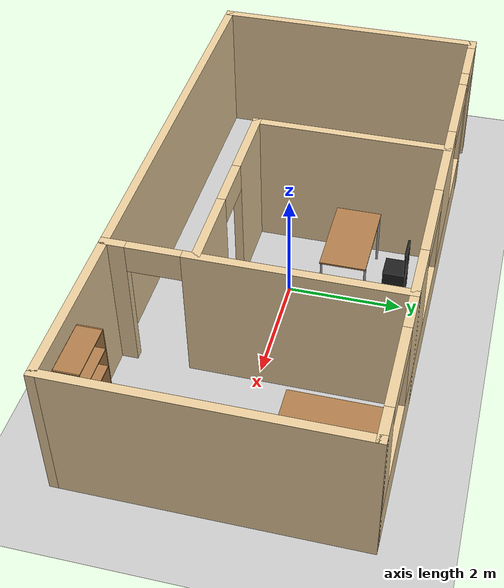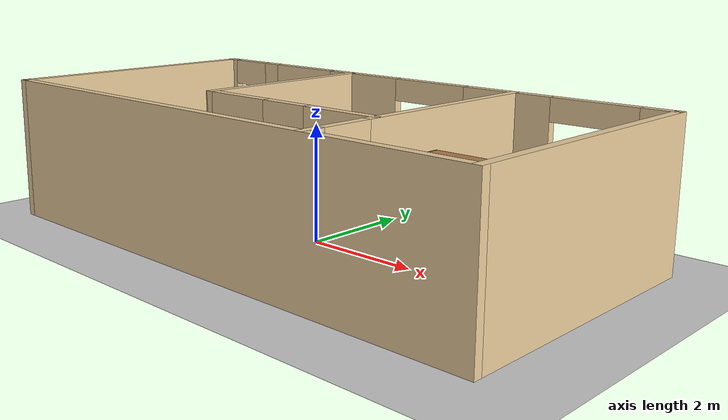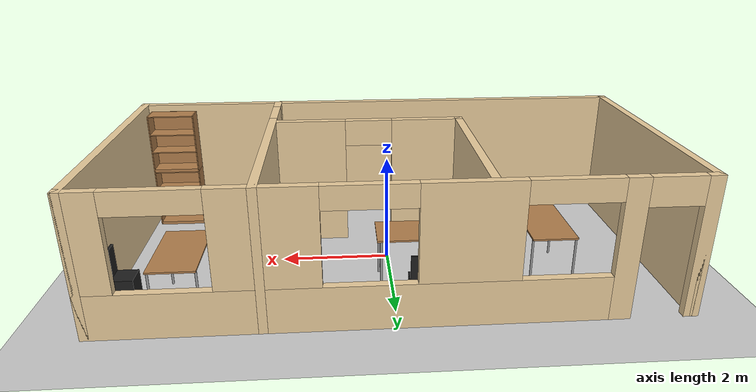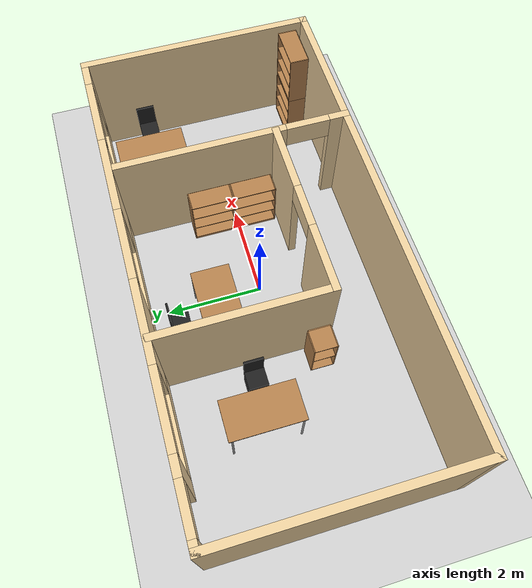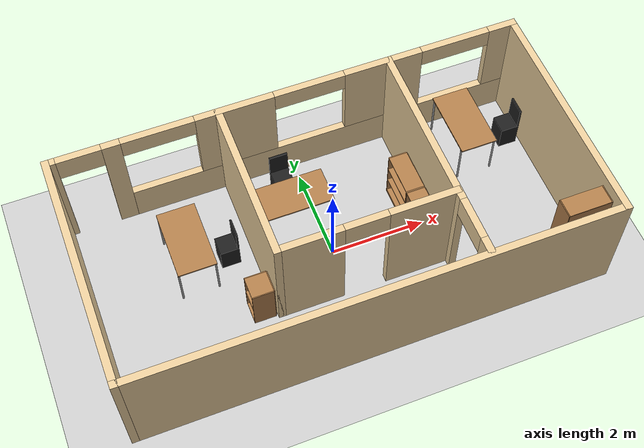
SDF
<sdf version="1.6">
 <world name="default">
  <light name="sun" type="directional">
   <pose>0 0 10 0 -0 0</pose>
   <diffuse>0.8 0.8 0.8 1</diffuse>
   <specular>0.2 0.2 0.2 1</specular>
   <attenuation>
    <range>1000</range>
    <constant>0.9</constant>
    <linear>0.01</linear>
    <quadratic>0.001</quadratic>
   </attenuation>
   <direction>-0.5 0.1 -0.9</direction>
  </light>
  <model name="ground_plane">
   <static>1</static>
   <link name="link">
    <collision name="collision">
     <geometry><plane><normal>0 0 1</normal><size>100 100</size></plane></geometry>
     <surface>
      <contact><collide_bitmask>65535</collide_bitmask></contact>
      <friction><ode><mu>100</mu><mu2>50</mu2></ode></friction>
     </surface>
    </collision>
    <visual name="visual">
     <cast_shadows>0</cast_shadows>
     <geometry><plane><normal>0 0 1</normal><size>100 100</size></plane></geometry>
     <material>
      <script><uri>file://media/materials/scripts/gazebo.material</uri><name>Gazebo/Grey</name></script>
     </material>
    </visual>
   </link>
  </model>
  <gravity>0 0 -9.8</gravity>
  <magnetic_field>6e-06 2.3e-05 -4.2e-05</magnetic_field>
  <atmosphere type="adiabatic"/>
  <physics name="default_physics" default="0" type="ode">
   <max_step_size>0.001</max_step_size>
   <real_time_factor>1</real_time_factor>
   <real_time_update_rate>1000</real_time_update_rate>
  </physics>
  <scene><ambient>0.4 0.4 0.4 1</ambient><background>0.7 0.7 0.7 1</background><shadows>1</shadows></scene>
  <spherical_coordinates>
   <surface_model>EARTH_WGS84</surface_model>
   <latitude_deg>0</latitude_deg>
   <longitude_deg>0</longitude_deg>
   <elevation>0</elevation>
   <heading_deg>0</heading_deg>
  </spherical_coordinates>
  <model name="Office">
   <pose>0 0 -0.002434 0 -0 0</pose>
   <link name="Wall_11">
    <pose>2.151 0 0 0 0 -1.5708</pose>
    <visual name="Wall_11_Visual_0">
     <pose>-0.664075 0 1.25 0 -0 0</pose>
     <geometry><box><size>3.67185 0.15 2.5</size></box></geometry>
     <material>
      <script><uri>file://media/materials/scripts/gazebo.material</uri><name>Gazebo/Grey</name></script>
      <ambient>0.921569 0.807843 0.615686 1</ambient>
     </material>
     <meta><layer>0</layer></meta>
    </visual>
    <collision name="Wall_11_Collision_0">
     <geometry><box><size>3.67185 0.15 2.5</size></box></geometry>
     <pose>-0.664075 0 1.25 0 -0 0</pose>
    </collision>
    <visual name="Wall_11_Visual_1">
     <pose>2.28593 0 1.25 0 -0 0</pose>
     <geometry><box><size>0.42815 0.15 2.5</size></box></geometry>
     <material>
      <script><uri>file://media/materials/scripts/gazebo.material</uri><name>Gazebo/Grey</name></script>
      <ambient>0.921569 0.807843 0.615686 1</ambient>
     </material>
     <meta><layer>0</layer></meta>
    </visual>
    <collision name="Wall_11_Collision_1">
     <geometry><box><size>0.42815 0.15 2.5</size></box></geometry>
     <pose>2.28593 0 1.25 0 -0 0</pose>
    </collision>
    <visual name="Wall_11_Visual_2">
     <pose>1.62185 0 2.25 0 -0 0</pose>
     <geometry><box><size>0.9 0.15 0.5</size></box></geometry>
     <material>
      <script><uri>file://media/materials/scripts/gazebo.material</uri><name>Gazebo/Grey</name></script>
      <ambient>0.921569 0.807843 0.615686 1</ambient>
     </material>
     <meta><layer>0</layer></meta>
    </visual>
    <collision name="Wall_11_Collision_2">
     <geometry><box><size>0.9 0.15 0.5</size></box></geometry>
     <pose>1.62185 0 2.25 0 -0 0</pose>
    </collision>
   </link>
   <link name="Wall_13">
    <collision name="Wall_13_Collision">
     <geometry><box><size>3.5 0.15 2.5</size></box></geometry>
     <pose>0 0 1.25 0 -0 0</pose>
    </collision>
    <visual name="Wall_13_Visual">
     <pose>0 0 1.25 0 -0 0</pose>
     <geometry><box><size>3.5 0.15 2.5</size></box></geometry>
     <material>
      <script><uri>file://media/materials/scripts/gazebo.material</uri><name>Gazebo/Grey</name></script>
      <ambient>0.921569 0.807843 0.615686 1</ambient>
     </material>
     <meta><layer>0</layer></meta>
    </visual>
    <pose>-1.473 0.723 0 0 0 -1.5708</pose>
   </link>
   <link name="Wall_14">
    <pose>0.327 -0.952 0 0 -0 0</pose>
    <visual name="Wall_14_Visual_0">
     <pose>-1.17643 0 1.25 0 -0 0</pose>
     <geometry><box><size>1.39715 0.15 2.5</size></box></geometry>
     <material>
      <script><uri>file://media/materials/scripts/gazebo.material</uri><name>Gazebo/Grey</name></script>
      <ambient>0.921569 0.807843 0.615686 1</ambient>
     </material>
     <meta><layer>0</layer></meta>
    </visual>
    <collision name="Wall_14_Collision_0">
     <geometry><box><size>1.39715 0.15 2.5</size></box></geometry>
     <pose>-1.17643 0 1.25 0 -0 0</pose>
    </collision>
    <visual name="Wall_14_Visual_1">
     <pose>1.14857 0 1.25 0 -0 0</pose>
     <geometry><box><size>1.45285 0.15 2.5</size></box></geometry>
     <material>
      <script><uri>file://media/materials/scripts/gazebo.material</uri><name>Gazebo/Grey</name></script>
      <ambient>0.921569 0.807843 0.615686 1</ambient>
     </material>
     <meta><layer>0</layer></meta>
    </visual>
    <collision name="Wall_14_Collision_1">
     <geometry><box><size>1.45285 0.15 2.5</size></box></geometry>
     <pose>1.14857 0 1.25 0 -0 0</pose>
    </collision>
    <visual name="Wall_14_Visual_2">
     <pose>-0.02785 0 2.25 0 -0 0</pose>
     <geometry><box><size>0.9 0.15 0.5</size></box></geometry>
     <material>
      <script><uri>file://media/materials/scripts/gazebo.material</uri><name>Gazebo/Grey</name></script>
      <ambient>0.921569 0.807843 0.615686 1</ambient>
     </material>
     <meta><layer>0</layer></meta>
    </visual>
    <collision name="Wall_14_Collision_2">
     <geometry><box><size>0.9 0.15 0.5</size></box></geometry>
     <pose>-0.02785 0 2.25 0 -0 0</pose>
    </collision>
   </link>
   <link name="Wall_6">
    <pose>0 2.425 0 0 -0 0</pose>
    <visual name="Wall_6_Visual_0">
     <pose>-4.8701 0 1.25 0 -0 0</pose>
     <geometry><box><size>0.2598 0.15 2.5</size></box></geometry>
     <material>
      <script><uri>file://media/materials/scripts/gazebo.material</uri><name>Gazebo/Grey</name></script>
      <ambient>0.921569 0.807843 0.615686 1</ambient>
     </material>
     <meta><layer>0</layer></meta>
    </visual>
    <collision name="Wall_6_Collision_0">
     <geometry><box><size>0.2598 0.15 2.5</size></box></geometry>
     <pose>-4.8701 0 1.25 0 -0 0</pose>
    </collision>
    <visual name="Wall_6_Visual_1">
     <pose>-3.65331 0 1.25 0 -0 0</pose>
     <geometry><box><size>0.373775 0.15 2.5</size></box></geometry>
     <material>
      <script><uri>file://media/materials/scripts/gazebo.material</uri><name>Gazebo/Grey</name></script>
      <ambient>0.921569 0.807843 0.615686 1</ambient>
     </material>
     <meta><layer>0</layer></meta>
    </visual>
    <collision name="Wall_6_Collision_1">
     <geometry><box><size>0.373775 0.15 2.5</size></box></geometry>
     <pose>-3.65331 0 1.25 0 -0 0</pose>
    </collision>
    <visual name="Wall_6_Visual_2">
     <pose>0.766788 0 0.4 0 -0 0</pose>
     <geometry><box><size>8.46642 0.15 0.8</size></box></geometry>
     <material>
      <script><uri>file://media/materials/scripts/gazebo.material</uri><name>Gazebo/Grey</name></script>
      <ambient>0.921569 0.807843 0.615686 1</ambient>
     </material>
     <meta><layer>0</layer></meta>
    </visual>
    <collision name="Wall_6_Collision_2">
     <geometry><box><size>8.46642 0.15 0.8</size></box></geometry>
     <pose>0.766788 0 0.4 0 -0 0</pose>
    </collision>
    <visual name="Wall_6_Visual_3">
     <pose>-1.14148 0 1.65 0 -0 0</pose>
     <geometry><box><size>1.64989 0.15 1.7</size></box></geometry>
     <material>
      <script><uri>file://media/materials/scripts/gazebo.material</uri><name>Gazebo/Grey</name></script>
      <ambient>0.921569 0.807843 0.615686 1</ambient>
     </material>
     <meta><layer>0</layer></meta>
    </visual>
    <collision name="Wall_6_Collision_3">
     <geometry><box><size>1.64989 0.15 1.7</size></box></geometry>
     <pose>-1.14148 0 1.65 0 -0 0</pose>
    </collision>
    <visual name="Wall_6_Visual_4">
     <pose>2.02591 0 1.65 0 -0 0</pose>
     <geometry><box><size>1.68489 0.15 1.7</size></box></geometry>
     <material>
      <script><uri>file://media/materials/scripts/gazebo.material</uri><name>Gazebo/Grey</name></script>
      <ambient>0.921569 0.807843 0.615686 1</ambient>
     </material>
     <meta><layer>0</layer></meta>
    </visual>
    <collision name="Wall_6_Collision_4">
     <geometry><box><size>1.68489 0.15 1.7</size></box></geometry>
     <pose>2.02591 0 1.65 0 -0 0</pose>
    </collision>
    <visual name="Wall_6_Visual_5">
     <pose>4.68417 0 1.65 0 -0 0</pose>
     <geometry><box><size>0.63165 0.15 1.7</size></box></geometry>
     <material>
      <script><uri>file://media/materials/scripts/gazebo.material</uri><name>Gazebo/Grey</name></script>
      <ambient>0.921569 0.807843 0.615686 1</ambient>
     </material>
     <meta><layer>0</layer></meta>
    </visual>
    <collision name="Wall_6_Collision_5">
     <geometry><box><size>0.63165 0.15 1.7</size></box></geometry>
     <pose>4.68417 0 1.65 0 -0 0</pose>
    </collision>
    <visual name="Wall_6_Visual_6">
     <pose>-4.2902 0 2.25 0 -0 0</pose>
     <geometry><box><size>0.9 0.15 0.5</size></box></geometry>
     <material>
      <script><uri>file://media/materials/scripts/gazebo.material</uri><name>Gazebo/Grey</name></script>
      <ambient>0.921569 0.807843 0.615686 1</ambient>
     </material>
     <meta><layer>0</layer></meta>
    </visual>
    <collision name="Wall_6_Collision_6">
     <geometry><box><size>0.9 0.15 0.5</size></box></geometry>
     <pose>-4.2902 0 2.25 0 -0 0</pose>
    </collision>
    <visual name="Wall_6_Visual_7">
     <pose>-2.71643 0 2.3 0 -0 0</pose>
     <geometry><box><size>1.5 0.15 0.4</size></box></geometry>
     <material>
      <script><uri>file://media/materials/scripts/gazebo.material</uri><name>Gazebo/Grey</name></script>
      <ambient>0.921569 0.807843 0.615686 1</ambient>
     </material>
     <meta><layer>0</layer></meta>
    </visual>
    <collision name="Wall_6_Collision_7">
     <geometry><box><size>1.5 0.15 0.4</size></box></geometry>
     <pose>-2.71643 0 2.3 0 -0 0</pose>
    </collision>
    <visual name="Wall_6_Visual_8">
     <pose>0.433462 0 2.3 0 -0 0</pose>
     <geometry><box><size>1.5 0.15 0.4</size></box></geometry>
     <material>
      <script><uri>file://media/materials/scripts/gazebo.material</uri><name>Gazebo/Grey</name></script>
      <ambient>0.921569 0.807843 0.615686 1</ambient>
     </material>
     <meta><layer>0</layer></meta>
    </visual>
    <collision name="Wall_6_Collision_8">
     <geometry><box><size>1.5 0.15 0.4</size></box></geometry>
     <pose>0.433462 0 2.3 0 -0 0</pose>
    </collision>
    <visual name="Wall_6_Visual_9">
     <pose>3.61835 0 2.3 0 -0 0</pose>
     <geometry><box><size>1.5 0.15 0.4</size></box></geometry>
     <material>
      <script><uri>file://media/materials/scripts/gazebo.material</uri><name>Gazebo/Grey</name></script>
      <ambient>0.921569 0.807843 0.615686 1</ambient>
     </material>
     <meta><layer>0</layer></meta>
    </visual>
    <collision name="Wall_6_Collision_9">
     <geometry><box><size>1.5 0.15 0.4</size></box></geometry>
     <pose>3.61835 0 2.3 0 -0 0</pose>
    </collision>
   </link>
   <link name="Wall_7">
    <collision name="Wall_7_Collision">
     <geometry><box><size>5 0.15 2.5</size></box></geometry>
     <pose>0 0 1.25 0 -0 0</pose>
    </collision>
    <visual name="Wall_7_Visual">
     <pose>0 0 1.25 0 -0 0</pose>
     <geometry><box><size>5 0.15 2.5</size></box></geometry>
     <material>
      <script><uri>file://media/materials/scripts/gazebo.material</uri><name>Gazebo/Grey</name></script>
      <ambient>0.921569 0.807843 0.615686 1</ambient>
     </material>
     <meta><layer>0</layer></meta>
    </visual>
    <pose>4.925 0 0 0 0 -1.5708</pose>
   </link>
   <link name="Wall_8">
    <collision name="Wall_8_Collision">
     <geometry><box><size>10 0.15 2.5</size></box></geometry>
     <pose>0 0 1.25 0 -0 0</pose>
    </collision>
    <visual name="Wall_8_Visual">
     <pose>0 0 1.25 0 -0 0</pose>
     <geometry><box><size>10 0.15 2.5</size></box></geometry>
     <material>
      <script><uri>file://media/materials/scripts/gazebo.material</uri><name>Gazebo/Grey</name></script>
      <ambient>0.921569 0.807843 0.615686 1</ambient>
     </material>
     <meta><layer>0</layer></meta>
    </visual>
    <pose>0 -2.425 0 0 -0 3.14159</pose>
   </link>
   <link name="Wall_9">
    <collision name="Wall_9_Collision">
     <geometry><box><size>5 0.15 2.5</size></box></geometry>
     <pose>0 0 1.25 0 -0 0</pose>
    </collision>
    <visual name="Wall_9_Visual">
     <pose>0 0 1.25 0 -0 0</pose>
     <geometry><box><size>5 0.15 2.5</size></box></geometry>
     <material>
      <script><uri>file://media/materials/scripts/gazebo.material</uri><name>Gazebo/Grey</name></script>
      <ambient>0.921569 0.807843 0.615686 1</ambient>
     </material>
     <meta><layer>0</layer></meta>
    </visual>
    <pose>-4.925 0 0 0 -0 1.5708</pose>
   </link>
   <static>1</static>
  </model>
  <model name="bookshelf">
   <static>1</static>
   <link name="link">
    <inertial><mass>1</mass></inertial>
    <collision name="back">
     <pose>0 0.005 0.6 0 -0 0</pose>
     <geometry><box><size>0.9 0.01 1.2</size></box></geometry>
    </collision>
    <visual name="visual1">
     <pose>0 0.005 0.6 0 -0 0</pose>
     <geometry><box><size>0.9 0.01 1.2</size></box></geometry>
     <material>
      <script><uri>file://media/materials/scripts/gazebo.material</uri><name>Gazebo/Wood</name></script>
     </material>
    </visual>
    <collision name="left_side">
     <pose>0.45 -0.195 0.6 0 -0 0</pose>
     <geometry><box><size>0.02 0.4 1.2</size></box></geometry>
    </collision>
    <visual name="visual2">
     <pose>0.45 -0.195 0.6 0 -0 0</pose>
     <geometry><box><size>0.02 0.4 1.2</size></box></geometry>
     <material>
      <script><uri>file://media/materials/scripts/gazebo.material</uri><name>Gazebo/Wood</name></script>
     </material>
    </visual>
    <collision name="right_side">
     <pose>-0.45 -0.195 0.6 0 -0 0</pose>
     <geometry><box><size>0.02 0.4 1.2</size></box></geometry>
    </collision>
    <visual name="visual3">
     <pose>-0.45 -0.195 0.6 0 -0 0</pose>
     <geometry><box><size>0.02 0.4 1.2</size></box></geometry>
     <material>
      <script><uri>file://media/materials/scripts/gazebo.material</uri><name>Gazebo/Wood</name></script>
     </material>
    </visual>
    <collision name="bottom">
     <pose>0 -0.195 0.03 0 -0 0</pose>
     <geometry><box><size>0.88 0.4 0.06</size></box></geometry>
    </collision>
    <visual name="visual4">
     <pose>0 -0.195 0.03 0 -0 0</pose>
     <geometry><box><size>0.88 0.4 0.06</size></box></geometry>
     <material>
      <script><uri>file://media/materials/scripts/gazebo.material</uri><name>Gazebo/Wood</name></script>
     </material>
    </visual>
    <collision name="top">
     <pose>0 -0.195 1.19 0 -0 0</pose>
     <geometry><box><size>0.88 0.4 0.02</size></box></geometry>
    </collision>
    <visual name="visual5">
     <pose>0 -0.195 1.19 0 -0 0</pose>
     <geometry><box><size>0.88 0.4 0.02</size></box></geometry>
     <material>
      <script><uri>file://media/materials/scripts/gazebo.material</uri><name>Gazebo/Wood</name></script>
     </material>
    </visual>
    <collision name="low_shelf">
     <pose>0 -0.195 0.43 0 -0 0</pose>
     <geometry><box><size>0.88 0.4 0.02</size></box></geometry>
    </collision>
    <visual name="visual6">
     <pose>0 -0.195 0.43 0 -0 0</pose>
     <geometry><box><size>0.88 0.4 0.02</size></box></geometry>
     <material>
      <script><uri>file://media/materials/scripts/gazebo.material</uri><name>Gazebo/Wood</name></script>
     </material>
    </visual>
    <collision name="high_shelf">
     <pose>0 -0.195 0.8 0 -0 0</pose>
     <geometry><box><size>0.88 0.4 0.02</size></box></geometry>
    </collision>
    <visual name="visual7">
     <pose>0 -0.195 0.8 0 -0 0</pose>
     <geometry><box><size>0.88 0.4 0.02</size></box></geometry>
     <material>
      <script><uri>file://media/materials/scripts/gazebo.material</uri><name>Gazebo/Wood</name></script>
     </material>
    </visual>
   </link>
   <pose>2.01356 -0.364029 0 0 0 -1.5708</pose>
  </model>
  <model name="bookshelf_0">
   <static>1</static>
   <link name="link">
    <inertial><mass>1</mass></inertial>
    <collision name="back">
     <pose>0 0.005 0.6 0 -0 0</pose>
     <geometry><box><size>0.9 0.01 1.2</size></box></geometry>
    </collision>
    <visual name="visual1">
     <pose>0 0.005 0.6 0 -0 0</pose>
     <geometry><box><size>0.9 0.01 1.2</size></box></geometry>
     <material>
      <script><uri>file://media/materials/scripts/gazebo.material</uri><name>Gazebo/Wood</name></script>
     </material>
    </visual>
    <collision name="left_side">
     <pose>0.45 -0.195 0.6 0 -0 0</pose>
     <geometry><box><size>0.02 0.4 1.2</size></box></geometry>
    </collision>
    <visual name="visual2">
     <pose>0.45 -0.195 0.6 0 -0 0</pose>
     <geometry><box><size>0.02 0.4 1.2</size></box></geometry>
     <material>
      <script><uri>file://media/materials/scripts/gazebo.material</uri><name>Gazebo/Wood</name></script>
     </material>
    </visual>
    <collision name="right_side">
     <pose>-0.45 -0.195 0.6 0 -0 0</pose>
     <geometry><box><size>0.02 0.4 1.2</size></box></geometry>
    </collision>
    <visual name="visual3">
     <pose>-0.45 -0.195 0.6 0 -0 0</pose>
     <geometry><box><size>0.02 0.4 1.2</size></box></geometry>
     <material>
      <script><uri>file://media/materials/scripts/gazebo.material</uri><name>Gazebo/Wood</name></script>
     </material>
    </visual>
    <collision name="bottom">
     <pose>0 -0.195 0.03 0 -0 0</pose>
     <geometry><box><size>0.88 0.4 0.06</size></box></geometry>
    </collision>
    <visual name="visual4">
     <pose>0 -0.195 0.03 0 -0 0</pose>
     <geometry><box><size>0.88 0.4 0.06</size></box></geometry>
     <material>
      <script><uri>file://media/materials/scripts/gazebo.material</uri><name>Gazebo/Wood</name></script>
     </material>
    </visual>
    <collision name="top">
     <pose>0 -0.195 1.19 0 -0 0</pose>
     <geometry><box><size>0.88 0.4 0.02</size></box></geometry>
    </collision>
    <visual name="visual5">
     <pose>0 -0.195 1.19 0 -0 0</pose>
     <geometry><box><size>0.88 0.4 0.02</size></box></geometry>
     <material>
      <script><uri>file://media/materials/scripts/gazebo.material</uri><name>Gazebo/Wood</name></script>
     </material>
    </visual>
    <collision name="low_shelf">
     <pose>0 -0.195 0.43 0 -0 0</pose>
     <geometry><box><size>0.88 0.4 0.02</size></box></geometry>
    </collision>
    <visual name="visual6">
     <pose>0 -0.195 0.43 0 -0 0</pose>
     <geometry><box><size>0.88 0.4 0.02</size></box></geometry>
     <material>
      <script><uri>file://media/materials/scripts/gazebo.material</uri><name>Gazebo/Wood</name></script>
     </material>
    </visual>
    <collision name="high_shelf">
     <pose>0 -0.195 0.8 0 -0 0</pose>
     <geometry><box><size>0.88 0.4 0.02</size></box></geometry>
    </collision>
    <visual name="visual7">
     <pose>0 -0.195 0.8 0 -0 0</pose>
     <geometry><box><size>0.88 0.4 0.02</size></box></geometry>
     <material>
      <script><uri>file://media/materials/scripts/gazebo.material</uri><name>Gazebo/Wood</name></script>
     </material>
    </visual>
   </link>
   <pose>4.3 -2.2 0 0 -0 3.14</pose>
  </model>
  <model name="bookshelf_1">
   <static>1</static>
   <link name="link">
    <inertial><mass>1</mass></inertial>
    <collision name="back">
     <pose>0 0.005 0.6 0 -0 0</pose>
     <geometry><box><size>0.9 0.01 1.2</size></box></geometry>
    </collision>
    <visual name="visual1">
     <pose>0 0.005 0.6 0 -0 0</pose>
     <geometry><box><size>0.9 0.01 1.2</size></box></geometry>
     <material>
      <script><uri>file://media/materials/scripts/gazebo.material</uri><name>Gazebo/Wood</name></script>
     </material>
    </visual>
    <collision name="left_side">
     <pose>0.45 -0.195 0.6 0 -0 0</pose>
     <geometry><box><size>0.02 0.4 1.2</size></box></geometry>
    </collision>
    <visual name="visual2">
     <pose>0.45 -0.195 0.6 0 -0 0</pose>
     <geometry><box><size>0.02 0.4 1.2</size></box></geometry>
     <material>
      <script><uri>file://media/materials/scripts/gazebo.material</uri><name>Gazebo/Wood</name></script>
     </material>
    </visual>
    <collision name="right_side">
     <pose>-0.45 -0.195 0.6 0 -0 0</pose>
     <geometry><box><size>0.02 0.4 1.2</size></box></geometry>
    </collision>
    <visual name="visual3">
     <pose>-0.45 -0.195 0.6 0 -0 0</pose>
     <geometry><box><size>0.02 0.4 1.2</size></box></geometry>
     <material>
      <script><uri>file://media/materials/scripts/gazebo.material</uri><name>Gazebo/Wood</name></script>
     </material>
    </visual>
    <collision name="bottom">
     <pose>0 -0.195 0.03 0 -0 0</pose>
     <geometry><box><size>0.88 0.4 0.06</size></box></geometry>
    </collision>
    <visual name="visual4">
     <pose>0 -0.195 0.03 0 -0 0</pose>
     <geometry><box><size>0.88 0.4 0.06</size></box></geometry>
     <material>
      <script><uri>file://media/materials/scripts/gazebo.material</uri><name>Gazebo/Wood</name></script>
     </material>
    </visual>
    <collision name="top">
     <pose>0 -0.195 1.19 0 -0 0</pose>
     <geometry><box><size>0.88 0.4 0.02</size></box></geometry>
    </collision>
    <visual name="visual5">
     <pose>0 -0.195 1.19 0 -0 0</pose>
     <geometry><box><size>0.88 0.4 0.02</size></box></geometry>
     <material>
      <script><uri>file://media/materials/scripts/gazebo.material</uri><name>Gazebo/Wood</name></script>
     </material>
    </visual>
    <collision name="low_shelf">
     <pose>0 -0.195 0.43 0 -0 0</pose>
     <geometry><box><size>0.88 0.4 0.02</size></box></geometry>
    </collision>
    <visual name="visual6">
     <pose>0 -0.195 0.43 0 -0 0</pose>
     <geometry><box><size>0.88 0.4 0.02</size></box></geometry>
     <material>
      <script><uri>file://media/materials/scripts/gazebo.material</uri><name>Gazebo/Wood</name></script>
     </material>
    </visual>
    <collision name="high_shelf">
     <pose>0 -0.195 0.8 0 -0 0</pose>
     <geometry><box><size>0.88 0.4 0.02</size></box></geometry>
    </collision>
    <visual name="visual7">
     <pose>0 -0.195 0.8 0 -0 0</pose>
     <geometry><box><size>0.88 0.4 0.02</size></box></geometry>
     <material>
      <script><uri>file://media/materials/scripts/gazebo.material</uri><name>Gazebo/Wood</name></script>
     </material>
    </visual>
   </link>
   <pose>4.3 -2.2 1.2 0 -0 3.14</pose>
  </model>
  <model name="cabinet">
   <static>1</static>
   <link name="cabinet_bottom_plate">
    <inertial>
     <pose>0 0 -1 0 -0 0</pose>
     <inertia><ixx>2.05</ixx><ixy>0</ixy><ixz>0</ixz><iyy>2.05</iyy><iyz>0</iyz><izz>2.05</izz></inertia>
     <mass>25</mass>
    </inertial>
    <collision name="cabinet_bottom_plate_geom">
     <pose>0 0 0.01 0 -0 0</pose>
     <geometry><box><size>0.45 0.45 0.02</size></box></geometry>
    </collision>
    <visual name="cabinet_bottom_plate_geom_visual">
     <pose>0 0 0.01 0 -0 0</pose>
     <geometry><box><size>0.45 0.45 0.02</size></box></geometry>
     <material>
      <script><uri>file://media/materials/scripts/gazebo.material</uri><name>Gazebo/Wood</name></script>
     </material>
    </visual>
    <collision name="cabinet_bottom_plate_geom_cabinet_back_plate">
     <pose>0.235 0 0.51 0 -0 0</pose>
     <geometry><box><size>0.02 0.45 1.02</size></box></geometry>
    </collision>
    <visual name="cabinet_bottom_plate_geom_cabinet_back_plate_visual">
     <pose>0.235 0 0.51 0 -0 0</pose>
     <geometry><box><size>0.02 0.45 1.02</size></box></geometry>
     <material>
      <script><uri>file://media/materials/scripts/gazebo.material</uri><name>Gazebo/Wood</name></script>
     </material>
    </visual>
    <collision name="cabinet_bottom_plate_geom_cabinet_left_plate">
     <pose>0 0.235 0.51 0 -0 0</pose>
     <geometry><box><size>0.45 0.02 1.02</size></box></geometry>
    </collision>
    <visual name="cabinet_bottom_plate_geom_cabinet_left_plate_visual">
     <pose>0 0.235 0.51 0 -0 0</pose>
     <geometry><box><size>0.45 0.02 1.02</size></box></geometry>
     <material>
      <script><uri>file://media/materials/scripts/gazebo.material</uri><name>Gazebo/Wood</name></script>
     </material>
    </visual>
    <collision name="cabinet_bottom_plate_geom_cabinet_middle_plate">
     <pose>0 0 0.51 0 -0 0</pose>
     <geometry><box><size>0.45 0.45 0.02</size></box></geometry>
    </collision>
    <visual name="cabinet_bottom_plate_geom_cabinet_middle_plate_visual">
     <pose>0 0 0.51 0 -0 0</pose>
     <geometry><box><size>0.45 0.45 0.02</size></box></geometry>
     <material>
      <script><uri>file://media/materials/scripts/gazebo.material</uri><name>Gazebo/Wood</name></script>
     </material>
    </visual>
    <collision name="cabinet_bottom_plate_geom_cabinet_right_plate">
     <pose>0 -0.235 0.51 0 -0 0</pose>
     <geometry><box><size>0.45 0.02 1.02</size></box></geometry>
    </collision>
    <visual name="cabinet_bottom_plate_geom_cabinet_right_plate_visual">
     <pose>0 -0.235 0.51 0 -0 0</pose>
     <geometry><box><size>0.45 0.02 1.02</size></box></geometry>
     <material>
      <script><uri>file://media/materials/scripts/gazebo.material</uri><name>Gazebo/Wood</name></script>
     </material>
    </visual>
    <collision name="cabinet_bottom_plate_geom_cabinet_top_plate">
     <pose>0 0 1.01 0 -0 0</pose>
     <geometry><box><size>0.45 0.45 0.02</size></box></geometry>
    </collision>
    <visual name="cabinet_bottom_plate_geom_cabinet_top_plate_visual">
     <pose>0 0 1.01 0 -0 0</pose>
     <geometry><box><size>0.45 0.45 0.02</size></box></geometry>
     <material>
      <script><uri>file://media/materials/scripts/gazebo.material</uri><name>Gazebo/Wood</name></script>
     </material>
    </visual>
   </link>
   <pose>-1.81126 -0.722075 0 0 -0 0</pose>
  </model>
  <model name="table">
   <static>1</static>
   <link name="link">
    <collision name="surface">
     <pose>0 0 1 0 -0 0</pose>
     <geometry><box><size>1.5 0.8 0.03</size></box></geometry>
     <surface><friction><ode><mu>0.6</mu><mu2>0.6</mu2></ode></friction></surface>
    </collision>
    <visual name="visual1">
     <pose>0 0 1 0 -0 0</pose>
     <geometry><box><size>1.5 0.8 0.03</size></box></geometry>
     <material>
      <script><uri>file://media/materials/scripts/gazebo.material</uri><name>Gazebo/Wood</name></script>
     </material>
    </visual>
    <collision name="front_left_leg">
     <pose>0.68 0.38 0.5 0 -0 0</pose>
     <geometry><cylinder><radius>0.02</radius><length>1</length></cylinder></geometry>
    </collision>
    <visual name="front_left_leg">
     <pose>0.68 0.38 0.5 0 -0 0</pose>
     <geometry><cylinder><radius>0.02</radius><length>1</length></cylinder></geometry>
     <material>
      <script><uri>file://media/materials/scripts/gazebo.material</uri><name>Gazebo/Grey</name></script>
     </material>
    </visual>
    <collision name="front_right_leg">
     <pose>0.68 -0.38 0.5 0 -0 0</pose>
     <geometry><cylinder><radius>0.02</radius><length>1</length></cylinder></geometry>
    </collision>
    <visual name="front_right_leg">
     <pose>0.68 -0.38 0.5 0 -0 0</pose>
     <geometry><cylinder><radius>0.02</radius><length>1</length></cylinder></geometry>
     <material>
      <script><uri>file://media/materials/scripts/gazebo.material</uri><name>Gazebo/Grey</name></script>
     </material>
    </visual>
    <collision name="back_right_leg">
     <pose>-0.68 -0.38 0.5 0 -0 0</pose>
     <geometry><cylinder><radius>0.02</radius><length>1</length></cylinder></geometry>
    </collision>
    <visual name="back_right_leg">
     <pose>-0.68 -0.38 0.5 0 -0 0</pose>
     <geometry><cylinder><radius>0.02</radius><length>1</length></cylinder></geometry>
     <material>
      <script><uri>file://media/materials/scripts/gazebo.material</uri><name>Gazebo/Grey</name></script>
     </material>
    </visual>
    <collision name="back_left_leg">
     <pose>-0.68 0.38 0.5 0 -0 0</pose>
     <geometry><cylinder><radius>0.02</radius><length>1</length></cylinder></geometry>
    </collision>
    <visual name="back_left_leg">
     <pose>-0.68 0.38 0.5 0 -0 0</pose>
     <geometry><cylinder><radius>0.02</radius><length>1</length></cylinder></geometry>
     <material>
      <script><uri>file://media/materials/scripts/gazebo.material</uri><name>Gazebo/Grey</name></script>
     </material>
    </visual>
   </link>
   <pose>-2.80696 0.770641 0 0 0 -1.5708</pose>
  </model>
  <model name="bookshelf_2">
   <static>1</static>
   <link name="link">
    <inertial><mass>1</mass></inertial>
    <collision name="back">
     <pose>0 0.005 0.6 0 -0 0</pose>
     <geometry><box><size>0.9 0.01 1.2</size></box></geometry>
    </collision>
    <visual name="visual1">
     <pose>0 0.005 0.6 0 -0 0</pose>
     <geometry><box><size>0.9 0.01 1.2</size></box></geometry>
     <material>
      <script><uri>file://media/materials/scripts/gazebo.material</uri><name>Gazebo/Wood</name></script>
     </material>
    </visual>
    <collision name="left_side">
     <pose>0.45 -0.195 0.6 0 -0 0</pose>
     <geometry><box><size>0.02 0.4 1.2</size></box></geometry>
    </collision>
    <visual name="visual2">
     <pose>0.45 -0.195 0.6 0 -0 0</pose>
     <geometry><box><size>0.02 0.4 1.2</size></box></geometry>
     <material>
      <script><uri>file://media/materials/scripts/gazebo.material</uri><name>Gazebo/Wood</name></script>
     </material>
    </visual>
    <collision name="right_side">
     <pose>-0.45 -0.195 0.6 0 -0 0</pose>
     <geometry><box><size>0.02 0.4 1.2</size></box></geometry>
    </collision>
    <visual name="visual3">
     <pose>-0.45 -0.195 0.6 0 -0 0</pose>
     <geometry><box><size>0.02 0.4 1.2</size></box></geometry>
     <material>
      <script><uri>file://media/materials/scripts/gazebo.material</uri><name>Gazebo/Wood</name></script>
     </material>
    </visual>
    <collision name="bottom">
     <pose>0 -0.195 0.03 0 -0 0</pose>
     <geometry><box><size>0.88 0.4 0.06</size></box></geometry>
    </collision>
    <visual name="visual4">
     <pose>0 -0.195 0.03 0 -0 0</pose>
     <geometry><box><size>0.88 0.4 0.06</size></box></geometry>
     <material>
      <script><uri>file://media/materials/scripts/gazebo.material</uri><name>Gazebo/Wood</name></script>
     </material>
    </visual>
    <collision name="top">
     <pose>0 -0.195 1.19 0 -0 0</pose>
     <geometry><box><size>0.88 0.4 0.02</size></box></geometry>
    </collision>
    <visual name="visual5">
     <pose>0 -0.195 1.19 0 -0 0</pose>
     <geometry><box><size>0.88 0.4 0.02</size></box></geometry>
     <material>
      <script><uri>file://media/materials/scripts/gazebo.material</uri><name>Gazebo/Wood</name></script>
     </material>
    </visual>
    <collision name="low_shelf">
     <pose>0 -0.195 0.43 0 -0 0</pose>
     <geometry><box><size>0.88 0.4 0.02</size></box></geometry>
    </collision>
    <visual name="visual6">
     <pose>0 -0.195 0.43 0 -0 0</pose>
     <geometry><box><size>0.88 0.4 0.02</size></box></geometry>
     <material>
      <script><uri>file://media/materials/scripts/gazebo.material</uri><name>Gazebo/Wood</name></script>
     </material>
    </visual>
    <collision name="high_shelf">
     <pose>0 -0.195 0.8 0 -0 0</pose>
     <geometry><box><size>0.88 0.4 0.02</size></box></geometry>
    </collision>
    <visual name="visual7">
     <pose>0 -0.195 0.8 0 -0 0</pose>
     <geometry><box><size>0.88 0.4 0.02</size></box></geometry>
     <material>
      <script><uri>file://media/materials/scripts/gazebo.material</uri><name>Gazebo/Wood</name></script>
     </material>
    </visual>
   </link>
   <pose>2.01356 0.555971 0 0 0 -1.5708</pose>
  </model>
  <model name="table_0">
   <static>1</static>
   <link name="link">
    <collision name="surface">
     <pose>0 0 1 0 -0 0</pose>
     <geometry><box><size>1.5 0.8 0.03</size></box></geometry>
     <surface><friction><ode><mu>0.6</mu><mu2>0.6</mu2></ode></friction></surface>
    </collision>
    <visual name="visual1">
     <pose>0 0 1 0 -0 0</pose>
     <geometry><box><size>1.5 0.8 0.03</size></box></geometry>
     <material>
      <script><uri>file://media/materials/scripts/gazebo.material</uri><name>Gazebo/Wood</name></script>
     </material>
    </visual>
    <collision name="front_left_leg">
     <pose>0.68 0.38 0.5 0 -0 0</pose>
     <geometry><cylinder><radius>0.02</radius><length>1</length></cylinder></geometry>
    </collision>
    <visual name="front_left_leg">
     <pose>0.68 0.38 0.5 0 -0 0</pose>
     <geometry><cylinder><radius>0.02</radius><length>1</length></cylinder></geometry>
     <material>
      <script><uri>file://media/materials/scripts/gazebo.material</uri><name>Gazebo/Grey</name></script>
     </material>
    </visual>
    <collision name="front_right_leg">
     <pose>0.68 -0.38 0.5 0 -0 0</pose>
     <geometry><cylinder><radius>0.02</radius><length>1</length></cylinder></geometry>
    </collision>
    <visual name="front_right_leg">
     <pose>0.68 -0.38 0.5 0 -0 0</pose>
     <geometry><cylinder><radius>0.02</radius><length>1</length></cylinder></geometry>
     <material>
      <script><uri>file://media/materials/scripts/gazebo.material</uri><name>Gazebo/Grey</name></script>
     </material>
    </visual>
    <collision name="back_right_leg">
     <pose>-0.68 -0.38 0.5 0 -0 0</pose>
     <geometry><cylinder><radius>0.02</radius><length>1</length></cylinder></geometry>
    </collision>
    <visual name="back_right_leg">
     <pose>-0.68 -0.38 0.5 0 -0 0</pose>
     <geometry><cylinder><radius>0.02</radius><length>1</length></cylinder></geometry>
     <material>
      <script><uri>file://media/materials/scripts/gazebo.material</uri><name>Gazebo/Grey</name></script>
     </material>
    </visual>
    <collision name="back_left_leg">
     <pose>-0.68 0.38 0.5 0 -0 0</pose>
     <geometry><cylinder><radius>0.02</radius><length>1</length></cylinder></geometry>
    </collision>
    <visual name="back_left_leg">
     <pose>-0.68 0.38 0.5 0 -0 0</pose>
     <geometry><cylinder><radius>0.02</radius><length>1</length></cylinder></geometry>
     <material>
      <script><uri>file://media/materials/scripts/gazebo.material</uri><name>Gazebo/Grey</name></script>
     </material>
    </visual>
   </link>
   <pose>-0.480047 0.988848 0 0 -0 0</pose>
  </model>
  <model name="table_1">
   <static>1</static>
   <link name="link">
    <collision name="surface">
     <pose>0 0 1 0 -0 0</pose>
     <geometry><box><size>1.5 0.8 0.03</size></box></geometry>
     <surface><friction><ode><mu>0.6</mu><mu2>0.6</mu2></ode></friction></surface>
    </collision>
    <visual name="visual1">
     <pose>0 0 1 0 -0 0</pose>
     <geometry><box><size>1.5 0.8 0.03</size></box></geometry>
     <material>
      <script><uri>file://media/materials/scripts/gazebo.material</uri><name>Gazebo/Wood</name></script>
     </material>
    </visual>
    <collision name="front_left_leg">
     <pose>0.68 0.38 0.5 0 -0 0</pose>
     <geometry><cylinder><radius>0.02</radius><length>1</length></cylinder></geometry>
    </collision>
    <visual name="front_left_leg">
     <pose>0.68 0.38 0.5 0 -0 0</pose>
     <geometry><cylinder><radius>0.02</radius><length>1</length></cylinder></geometry>
     <material>
      <script><uri>file://media/materials/scripts/gazebo.material</uri><name>Gazebo/Grey</name></script>
     </material>
    </visual>
    <collision name="front_right_leg">
     <pose>0.68 -0.38 0.5 0 -0 0</pose>
     <geometry><cylinder><radius>0.02</radius><length>1</length></cylinder></geometry>
    </collision>
    <visual name="front_right_leg">
     <pose>0.68 -0.38 0.5 0 -0 0</pose>
     <geometry><cylinder><radius>0.02</radius><length>1</length></cylinder></geometry>
     <material>
      <script><uri>file://media/materials/scripts/gazebo.material</uri><name>Gazebo/Grey</name></script>
     </material>
    </visual>
    <collision name="back_right_leg">
     <pose>-0.68 -0.38 0.5 0 -0 0</pose>
     <geometry><cylinder><radius>0.02</radius><length>1</length></cylinder></geometry>
    </collision>
    <visual name="back_right_leg">
     <pose>-0.68 -0.38 0.5 0 -0 0</pose>
     <geometry><cylinder><radius>0.02</radius><length>1</length></cylinder></geometry>
     <material>
      <script><uri>file://media/materials/scripts/gazebo.material</uri><name>Gazebo/Grey</name></script>
     </material>
    </visual>
    <collision name="back_left_leg">
     <pose>-0.68 0.38 0.5 0 -0 0</pose>
     <geometry><cylinder><radius>0.02</radius><length>1</length></cylinder></geometry>
    </collision>
    <visual name="back_left_leg">
     <pose>-0.68 0.38 0.5 0 -0 0</pose>
     <geometry><cylinder><radius>0.02</radius><length>1</length></cylinder></geometry>
     <material>
      <script><uri>file://media/materials/scripts/gazebo.material</uri><name>Gazebo/Grey</name></script>
     </material>
    </visual>
   </link>
   <pose>3.55614 1.4708 0 0 0 -1.5708</pose>
  </model>
  <model name="Chair_0">
   <link name="link_3">
    <pose>-0.00113 0.09124 -0.159831 0 -0 0</pose>
    <inertial>
     <mass>1</mass>
     <inertia>
      <ixx>0.166667</ixx>
      <ixy>0</ixy>
      <ixz>0</ixz>
      <iyy>0.166667</iyy>
      <iyz>0</iyz>
      <izz>0.166667</izz>
     </inertia>
    </inertial>
    <visual name="visual">
     <geometry><box><size>0.4 0.4 0.6</size></box></geometry>
     <material>
      <lighting>1</lighting>
      <script><uri>file://media/materials/scripts/gazebo.material</uri><name>Gazebo/Black</name></script>
      <shader type="pixel"><normal_map>__default__</normal_map></shader>
      <ambient>0.3 0.3 0.3 1</ambient>
      <diffuse>0.7 0.7 0.7 1</diffuse>
      <specular>0.01 0.01 0.01 1</specular>
      <emissive>0 0 0 1</emissive>
     </material>
    </visual>
    <collision name="collision">
     <geometry><box><size>0.4 0.4 0.6</size></box></geometry>
     <surface>
      <friction>
       <ode><mu>1</mu><mu2>1</mu2><fdir1>0 0 0</fdir1><slip1>0</slip1><slip2>0</slip2></ode>
       <torsional>
        <coefficient>1</coefficient>
        <patch_radius>0</patch_radius>
        <surface_radius>0</surface_radius>
        <use_patch_radius>1</use_patch_radius>
        <ode><slip>0</slip></ode>
       </torsional>
      </friction>
      <bounce><restitution_coefficient>0</restitution_coefficient><threshold>1e+06</threshold></bounce>
      <contact>
       <collide_without_contact>0</collide_without_contact>
       <collide_without_contact_bitmask>1</collide_without_contact_bitmask>
       <collide_bitmask>1</collide_bitmask>
       <ode>
        <soft_cfm>0</soft_cfm>
        <soft_erp>0.2</soft_erp>
        <kp>1e+13</kp>
        <kd>1</kd>
        <max_vel>0.01</max_vel>
        <min_depth>0</min_depth>
       </ode>
       <bullet>
        <split_impulse>1</split_impulse>
        <split_impulse_penetration_threshold>-0.01</split_impulse_penetration_threshold>
        <soft_cfm>0</soft_cfm>
        <soft_erp>0.2</soft_erp>
        <kp>1e+13</kp>
        <kd>1</kd>
       </bullet>
      </contact>
     </surface>
    </collision>
   </link>
   <link name="link_4">
    <pose>0.001133 -0.091237 0.390169 0 -0 0</pose>
    <inertial>
     <mass>1</mass>
     <inertia>
      <ixx>0.166667</ixx>
      <ixy>0</ixy>
      <ixz>0</ixz>
      <iyy>0.166667</iyy>
      <iyz>0</iyz>
      <izz>0.166667</izz>
     </inertia>
    </inertial>
    <visual name="visual">
     <geometry><box><size>0.4 0.04 0.5</size></box></geometry>
     <material>
      <lighting>1</lighting>
      <script><uri>file://media/materials/scripts/gazebo.material</uri><name>Gazebo/Black</name></script>
      <shader type="pixel"><normal_map>__default__</normal_map></shader>
      <ambient>0.3 0.3 0.3 1</ambient>
      <diffuse>0.7 0.7 0.7 1</diffuse>
      <specular>0.01 0.01 0.01 1</specular>
      <emissive>0 0 0 1</emissive>
     </material>
    </visual>
    <collision name="collision">
     <geometry><box><size>0.4 0.04 0.5</size></box></geometry>
     <surface>
      <friction>
       <ode><mu>1</mu><mu2>1</mu2><fdir1>0 0 0</fdir1><slip1>0</slip1><slip2>0</slip2></ode>
       <torsional>
        <coefficient>1</coefficient>
        <patch_radius>0</patch_radius>
        <surface_radius>0</surface_radius>
        <use_patch_radius>1</use_patch_radius>
        <ode><slip>0</slip></ode>
       </torsional>
      </friction>
      <bounce><restitution_coefficient>0</restitution_coefficient><threshold>1e+06</threshold></bounce>
      <contact>
       <collide_without_contact>0</collide_without_contact>
       <collide_without_contact_bitmask>1</collide_without_contact_bitmask>
       <collide_bitmask>1</collide_bitmask>
       <ode>
        <soft_cfm>0</soft_cfm>
        <soft_erp>0.2</soft_erp>
        <kp>1e+13</kp>
        <kd>1</kd>
        <max_vel>0.01</max_vel>
        <min_depth>0</min_depth>
       </ode>
       <bullet>
        <split_impulse>1</split_impulse>
        <split_impulse_penetration_threshold>-0.01</split_impulse_penetration_threshold>
        <soft_cfm>0</soft_cfm>
        <soft_erp>0.2</soft_erp>
        <kp>1e+13</kp>
        <kd>1</kd>
       </bullet>
      </contact>
     </surface>
    </collision>
   </link>
   <static>1</static>
   <pose>-1.94858 0.673317 0.390169 0 -0 1.5708</pose>
  </model>
  <model name="Chair_0_clone">
   <link name="link_3">
    <pose>-0.00113 0.09124 -0.159831 0 -0 0</pose>
    <inertial>
     <mass>1</mass>
     <inertia>
      <ixx>0.166667</ixx>
      <ixy>0</ixy>
      <ixz>0</ixz>
      <iyy>0.166667</iyy>
      <iyz>0</iyz>
      <izz>0.166667</izz>
     </inertia>
    </inertial>
    <visual name="visual">
     <geometry><box><size>0.4 0.4 0.6</size></box></geometry>
     <material>
      <lighting>1</lighting>
      <script><uri>file://media/materials/scripts/gazebo.material</uri><name>Gazebo/Black</name></script>
      <shader type="pixel"><normal_map>__default__</normal_map></shader>
      <ambient>0.3 0.3 0.3 1</ambient>
      <diffuse>0.7 0.7 0.7 1</diffuse>
      <specular>0.01 0.01 0.01 1</specular>
      <emissive>0 0 0 1</emissive>
     </material>
    </visual>
    <collision name="collision">
     <geometry><box><size>0.4 0.4 0.6</size></box></geometry>
     <surface>
      <friction>
       <ode><mu>1</mu><mu2>1</mu2><fdir1>0 0 0</fdir1><slip1>0</slip1><slip2>0</slip2></ode>
       <torsional>
        <coefficient>1</coefficient>
        <patch_radius>0</patch_radius>
        <surface_radius>0</surface_radius>
        <use_patch_radius>1</use_patch_radius>
        <ode><slip>0</slip></ode>
       </torsional>
      </friction>
      <bounce><restitution_coefficient>0</restitution_coefficient><threshold>1e+06</threshold></bounce>
      <contact>
       <collide_without_contact>0</collide_without_contact>
       <collide_without_contact_bitmask>1</collide_without_contact_bitmask>
       <collide_bitmask>1</collide_bitmask>
       <ode>
        <soft_cfm>0</soft_cfm>
        <soft_erp>0.2</soft_erp>
        <kp>1e+13</kp>
        <kd>1</kd>
        <max_vel>0.01</max_vel>
        <min_depth>0</min_depth>
       </ode>
       <bullet>
        <split_impulse>1</split_impulse>
        <split_impulse_penetration_threshold>-0.01</split_impulse_penetration_threshold>
        <soft_cfm>0</soft_cfm>
        <soft_erp>0.2</soft_erp>
        <kp>1e+13</kp>
        <kd>1</kd>
       </bullet>
      </contact>
     </surface>
    </collision>
   </link>
   <link name="link_4">
    <pose>0.001133 -0.091237 0.390169 0 -0 0</pose>
    <inertial>
     <mass>1</mass>
     <inertia>
      <ixx>0.166667</ixx>
      <ixy>0</ixy>
      <ixz>0</ixz>
      <iyy>0.166667</iyy>
      <iyz>0</iyz>
      <izz>0.166667</izz>
     </inertia>
    </inertial>
    <visual name="visual">
     <geometry><box><size>0.4 0.04 0.5</size></box></geometry>
     <material>
      <lighting>1</lighting>
      <script><uri>file://media/materials/scripts/gazebo.material</uri><name>Gazebo/Black</name></script>
      <shader type="pixel"><normal_map>__default__</normal_map></shader>
      <ambient>0.3 0.3 0.3 1</ambient>
      <diffuse>0.7 0.7 0.7 1</diffuse>
      <specular>0.01 0.01 0.01 1</specular>
      <emissive>0 0 0 1</emissive>
     </material>
    </visual>
    <collision name="collision">
     <geometry><box><size>0.4 0.04 0.5</size></box></geometry>
     <surface>
      <friction>
       <ode><mu>1</mu><mu2>1</mu2><fdir1>0 0 0</fdir1><slip1>0</slip1><slip2>0</slip2></ode>
       <torsional>
        <coefficient>1</coefficient>
        <patch_radius>0</patch_radius>
        <surface_radius>0</surface_radius>
        <use_patch_radius>1</use_patch_radius>
        <ode><slip>0</slip></ode>
       </torsional>
      </friction>
      <bounce><restitution_coefficient>0</restitution_coefficient><threshold>1e+06</threshold></bounce>
      <contact>
       <collide_without_contact>0</collide_without_contact>
       <collide_without_contact_bitmask>1</collide_without_contact_bitmask>
       <collide_bitmask>1</collide_bitmask>
       <ode>
        <soft_cfm>0</soft_cfm>
        <soft_erp>0.2</soft_erp>
        <kp>1e+13</kp>
        <kd>1</kd>
        <max_vel>0.01</max_vel>
        <min_depth>0</min_depth>
       </ode>
       <bullet>
        <split_impulse>1</split_impulse>
        <split_impulse_penetration_threshold>-0.01</split_impulse_penetration_threshold>
        <soft_cfm>0</soft_cfm>
        <soft_erp>0.2</soft_erp>
        <kp>1e+13</kp>
        <kd>1</kd>
       </bullet>
      </contact>
     </surface>
    </collision>
   </link>
   <static>1</static>
   <pose>4.65236 1.39286 0.390169 0 -0 1.5708</pose>
  </model>
  <model name="Chair_0_clone_clone">
   <link name="link_3">
    <pose>-0.00113 0.09124 -0.159831 0 -0 0</pose>
    <inertial>
     <mass>1</mass>
     <inertia>
      <ixx>0.166667</ixx>
      <ixy>0</ixy>
      <ixz>0</ixz>
      <iyy>0.166667</iyy>
      <iyz>0</iyz>
      <izz>0.166667</izz>
     </inertia>
    </inertial>
    <visual name="visual">
     <geometry><box><size>0.4 0.4 0.6</size></box></geometry>
     <material>
      <lighting>1</lighting>
      <script><uri>file://media/materials/scripts/gazebo.material</uri><name>Gazebo/Black</name></script>
      <shader type="pixel"><normal_map>__default__</normal_map></shader>
      <ambient>0.3 0.3 0.3 1</ambient>
      <diffuse>0.7 0.7 0.7 1</diffuse>
      <specular>0.01 0.01 0.01 1</specular>
      <emissive>0 0 0 1</emissive>
     </material>
    </visual>
    <collision name="collision">
     <geometry><box><size>0.4 0.4 0.6</size></box></geometry>
     <surface>
      <friction>
       <ode><mu>1</mu><mu2>1</mu2><fdir1>0 0 0</fdir1><slip1>0</slip1><slip2>0</slip2></ode>
       <torsional>
        <coefficient>1</coefficient>
        <patch_radius>0</patch_radius>
        <surface_radius>0</surface_radius>
        <use_patch_radius>1</use_patch_radius>
        <ode><slip>0</slip></ode>
       </torsional>
      </friction>
      <bounce><restitution_coefficient>0</restitution_coefficient><threshold>1e+06</threshold></bounce>
      <contact>
       <collide_without_contact>0</collide_without_contact>
       <collide_without_contact_bitmask>1</collide_without_contact_bitmask>
       <collide_bitmask>1</collide_bitmask>
       <ode>
        <soft_cfm>0</soft_cfm>
        <soft_erp>0.2</soft_erp>
        <kp>1e+13</kp>
        <kd>1</kd>
        <max_vel>0.01</max_vel>
        <min_depth>0</min_depth>
       </ode>
       <bullet>
        <split_impulse>1</split_impulse>
        <split_impulse_penetration_threshold>-0.01</split_impulse_penetration_threshold>
        <soft_cfm>0</soft_cfm>
        <soft_erp>0.2</soft_erp>
        <kp>1e+13</kp>
        <kd>1</kd>
       </bullet>
      </contact>
     </surface>
    </collision>
   </link>
   <link name="link_4">
    <pose>0.001133 -0.091237 0.390169 0 -0 0</pose>
    <inertial>
     <mass>1</mass>
     <inertia>
      <ixx>0.166667</ixx>
      <ixy>0</ixy>
      <ixz>0</ixz>
      <iyy>0.166667</iyy>
      <iyz>0</iyz>
      <izz>0.166667</izz>
     </inertia>
    </inertial>
    <visual name="visual">
     <geometry><box><size>0.4 0.04 0.5</size></box></geometry>
     <material>
      <lighting>1</lighting>
      <script><uri>file://media/materials/scripts/gazebo.material</uri><name>Gazebo/Black</name></script>
      <shader type="pixel"><normal_map>__default__</normal_map></shader>
      <ambient>0.3 0.3 0.3 1</ambient>
      <diffuse>0.7 0.7 0.7 1</diffuse>
      <specular>0.01 0.01 0.01 1</specular>
      <emissive>0 0 0 1</emissive>
     </material>
    </visual>
    <collision name="collision">
     <geometry><box><size>0.4 0.04 0.5</size></box></geometry>
     <surface>
      <friction>
       <ode><mu>1</mu><mu2>1</mu2><fdir1>0 0 0</fdir1><slip1>0</slip1><slip2>0</slip2></ode>
       <torsional>
        <coefficient>1</coefficient>
        <patch_radius>0</patch_radius>
        <surface_radius>0</surface_radius>
        <use_patch_radius>1</use_patch_radius>
        <ode><slip>0</slip></ode>
       </torsional>
      </friction>
      <bounce><restitution_coefficient>0</restitution_coefficient><threshold>1e+06</threshold></bounce>
      <contact>
       <collide_without_contact>0</collide_without_contact>
       <collide_without_contact_bitmask>1</collide_without_contact_bitmask>
       <collide_bitmask>1</collide_bitmask>
       <ode>
        <soft_cfm>0</soft_cfm>
        <soft_erp>0.2</soft_erp>
        <kp>1e+13</kp>
        <kd>1</kd>
        <max_vel>0.01</max_vel>
        <min_depth>0</min_depth>
       </ode>
       <bullet>
        <split_impulse>1</split_impulse>
        <split_impulse_penetration_threshold>-0.01</split_impulse_penetration_threshold>
        <soft_cfm>0</soft_cfm>
        <soft_erp>0.2</soft_erp>
        <kp>1e+13</kp>
        <kd>1</kd>
       </bullet>
      </contact>
     </surface>
    </collision>
   </link>
   <static>1</static>
   <pose>-0.443869 1.90515 0.390169 0 0 -3.14159</pose>
  </model>
 </world>
</sdf>
